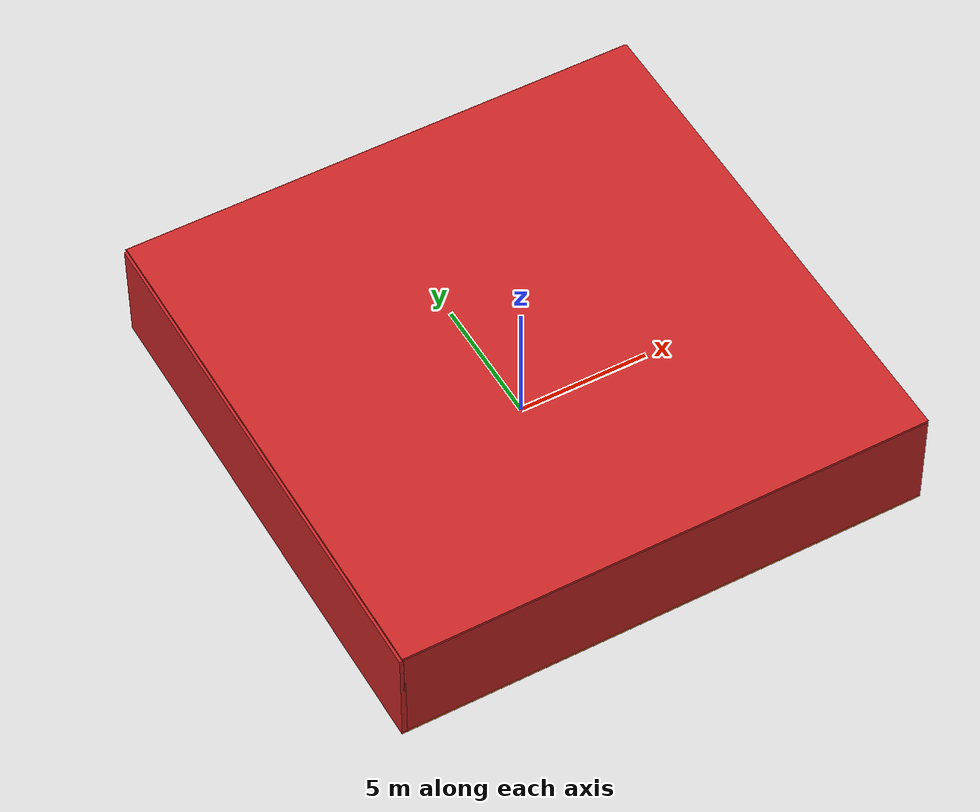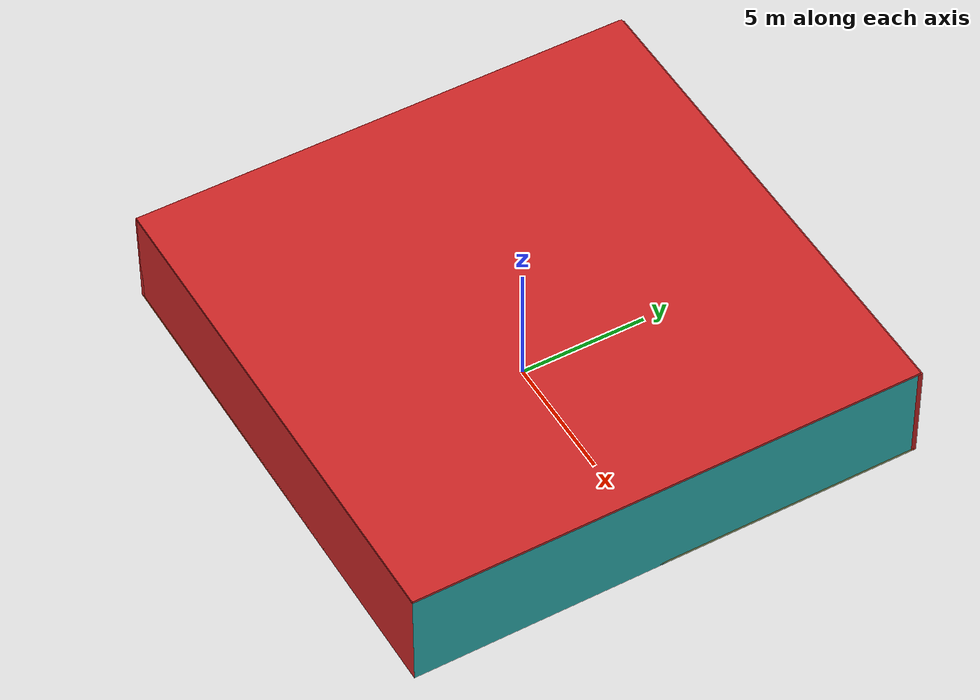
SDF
<sdf version="1.4">
 <world name="default">
  <physics type="ode">
   <max_step_size>0.001</max_step_size>
   <real_time_factor>1</real_time_factor>
   <real_time_update_rate>1000</real_time_update_rate>
   <gravity>0 0 -9.8</gravity>
  </physics>
  <scene><ambient>0.4 0.4 0.4 1</ambient><background>0.7 0.7 0.7 1</background><shadows>1</shadows></scene>
  <model name="Surrounding">
   <static>1</static>
   <link name="Ceiling">
    <collision name="Ceiling_Collision"><geometry><box><size>20 20 0.1</size></box></geometry></collision>
    <visual name="Ceiling_Visual">
     <geometry><box><size>20 20 0.1</size></box></geometry>
     <material>
      <script><uri>file://media/materials/scripts/gazebo.material</uri><name>Gazebo/RedGlow</name></script>
     </material>
    </visual>
    <pose>0 0 4.05 0 0 0</pose>
   </link>
   <link name="Wall_South">
    <collision name="Wall_South_Collision">
     <geometry><box><size>20 0 4</size></box></geometry>
     <pose>0 0 2 0 -0 0</pose>
    </collision>
    <visual name="Wall_South_Visual">
     <pose>0 0 2 0 -0 0</pose>
     <geometry><box><size>20 0 4</size></box></geometry>
     <material>
      <script><uri>file://media/materials/scripts/gazebo.material</uri><name>Gazebo/RedBright</name></script>
     </material>
    </visual>
    <velocity_decay><linear>0</linear><angular>0</angular></velocity_decay>
    <pose>0 -10 0 0 -0 0</pose>
   </link>
   <link name="Wall_East">
    <collision name="Wall_21_Collision">
     <geometry><box><size>20 0 4</size></box></geometry>
     <pose>0 0 2 0 -0 0</pose>
    </collision>
    <visual name="Wall_21_Visual">
     <pose>0 0 2 0 -0 0</pose>
     <geometry><box><size>20 0 4</size></box></geometry>
     <material>
      <script>
       <uri>file://media/materials/scripts/gazebo.material</uri>
       <name>Gazebo/TurquoiseGlowOutline</name>
      </script>
     </material>
    </visual>
    <velocity_decay><linear>0</linear><angular>0</angular></velocity_decay>
    <pose>10 0 0 0 -0 1.5708</pose>
   </link>
   <link name="Wall_North">
    <collision name="Wall_22_Collision">
     <geometry><box><size>20 0.2 4</size></box></geometry>
     <pose>0 0 2 0 -0 0</pose>
    </collision>
    <visual name="Wall_22_Visual">
     <pose>0 0 2 0 -0 0</pose>
     <geometry><box><size>20 0.2 4</size></box></geometry>
     <material>
      <script><uri>file://media/materials/scripts/gazebo.material</uri><name>Gazebo/RedGlow</name></script>
     </material>
    </visual>
    <velocity_decay><linear>0</linear><angular>0</angular></velocity_decay>
    <pose>0 10 0 0 -0 0</pose>
   </link>
   <link name="Wall_West">
    <collision name="Wall_23_Collision">
     <geometry><box><size>20 0.2 4</size></box></geometry>
     <pose>0 0 2 0 -0 0</pose>
    </collision>
    <visual name="Wall_23_Visual">
     <pose>0 0 2 0 -0 0</pose>
     <geometry><box><size>20 0.2 4</size></box></geometry>
     <material>
      <script><uri>file://media/materials/scripts/gazebo.material</uri><name>Gazebo/Red</name></script>
     </material>
    </visual>
    <velocity_decay><linear>0</linear><angular>0</angular></velocity_decay>
    <pose>-10 0 0 0 0 -1.5708</pose>
   </link>
   <link name="Ground_link">
    <collision name="collision">
     <pose>0 0 .05 0 -0 0</pose>
     <geometry><box><size>20 20 0.1</size></box></geometry>
    </collision>
    <visual name="visual">
     <pose>0 0 .05 0 -0 0</pose>
     <geometry><box><size>20 20 0.1</size></box></geometry>
     <material>
      <script>
       <uri>file://media/materials/scripts/gazebo.material</uri>
       <name>Gazebo/OrangeTransparent</name>
      </script>
     </material>
    </visual>
   </link>
   <static>1</static>
  </model>
  <spherical_coordinates>
   <surface_model>EARTH_WGS84</surface_model>
   <latitude_deg>0</latitude_deg>
   <longitude_deg>0</longitude_deg>
   <elevation>0</elevation>
   <heading_deg>0</heading_deg>
  </spherical_coordinates>
  <light name="lightball_0" type="diffuse">
   <diffuse>0.8 0.8 0.8 1</diffuse>
   <specular>0.2 0.2 0.2 1</specular>
   <attenuation>
    <range>100</range>
    <constant>0.7</constant>
    <linear>0.01</linear>
    <quadratic>0.001</quadratic>
   </attenuation>
   <direction>-0.5 0.1 -0.9</direction>
   <pose>-8.66628517001 2.91021592244 2.44352476002 0 0 0</pose>
  </light>
  <light name="lightball_1" type="diffuse">
   <diffuse>0.8 0.8 0.8 1</diffuse>
   <specular>0.2 0.2 0.2 1</specular>
   <attenuation>
    <range>100</range>
    <constant>0.7</constant>
    <linear>0.01</linear>
    <quadratic>0.001</quadratic>
   </attenuation>
   <direction>-0.5 0.1 -0.9</direction>
   <pose>-2.67743521249 -4.21911867908 3.69198565178 0 0 0</pose>
  </light>
  <light name="lightball_2" type="diffuse">
   <diffuse>0.8 0.8 0.8 1</diffuse>
   <specular>0.2 0.2 0.2 1</specular>
   <attenuation>
    <range>100</range>
    <constant>0.7</constant>
    <linear>0.01</linear>
    <quadratic>0.001</quadratic>
   </attenuation>
   <direction>-0.5 0.1 -0.9</direction>
   <pose>2.08517463802 -9.63748601568 0.778774742876 0 0 0</pose>
  </light>
  <light name="lightball_3" type="diffuse">
   <diffuse>0.8 0.8 0.8 1</diffuse>
   <specular>0.2 0.2 0.2 1</specular>
   <attenuation>
    <range>100</range>
    <constant>0.7</constant>
    <linear>0.01</linear>
    <quadratic>0.001</quadratic>
   </attenuation>
   <direction>-0.5 0.1 -0.9</direction>
   <pose>2.73017329094 8.59639276212 2.00708234466 0 0 0</pose>
  </light>
  <light name="lightball_4" type="diffuse">
   <diffuse>0.8 0.8 0.8 1</diffuse>
   <specular>0.2 0.2 0.2 1</specular>
   <attenuation>
    <range>100</range>
    <constant>0.7</constant>
    <linear>0.01</linear>
    <quadratic>0.001</quadratic>
   </attenuation>
   <direction>-0.5 0.1 -0.9</direction>
   <pose>4.26485933936 3.99161443178 3.48043035424 0 0 0</pose>
  </light>
  <light name="lightball_5" type="diffuse">
   <diffuse>0.8 0.8 0.8 1</diffuse>
   <specular>0.2 0.2 0.2 1</specular>
   <attenuation>
    <range>100</range>
    <constant>0.7</constant>
    <linear>0.01</linear>
    <quadratic>0.001</quadratic>
   </attenuation>
   <direction>-0.5 0.1 -0.9</direction>
   <pose>7.51723693313 -1.89911057308 2.64647037711 0 0 0</pose>
  </light>
  <light name="lightball_6" type="diffuse">
   <diffuse>0.8 0.8 0.8 1</diffuse>
   <specular>0.2 0.2 0.2 1</specular>
   <attenuation>
    <range>100</range>
    <constant>0.7</constant>
    <linear>0.01</linear>
    <quadratic>0.001</quadratic>
   </attenuation>
   <direction>-0.5 0.1 -0.9</direction>
   <pose>-5.84089132358 -0.352616922346 2.99408615199 0 0 0</pose>
  </light>
  <light name="lightball_7" type="diffuse">
   <diffuse>0.8 0.8 0.8 1</diffuse>
   <specular>0.2 0.2 0.2 1</specular>
   <attenuation>
    <range>100</range>
    <constant>0.7</constant>
    <linear>0.01</linear>
    <quadratic>0.001</quadratic>
   </attenuation>
   <direction>-0.5 0.1 -0.9</direction>
   <pose>-6.47324840517 4.53301240955 3.43935200599 0 0 0</pose>
  </light>
  <light name="lightball_8" type="diffuse">
   <diffuse>0.8 0.8 0.8 1</diffuse>
   <specular>0.2 0.2 0.2 1</specular>
   <attenuation>
    <range>100</range>
    <constant>0.7</constant>
    <linear>0.01</linear>
    <quadratic>0.001</quadratic>
   </attenuation>
   <direction>-0.5 0.1 -0.9</direction>
   <pose>3.95477259867 6.7132357276 1.74902602596 0 0 0</pose>
  </light>
  <light name="lightball_9" type="diffuse">
   <diffuse>0.8 0.8 0.8 1</diffuse>
   <specular>0.2 0.2 0.2 1</specular>
   <attenuation>
    <range>100</range>
    <constant>0.7</constant>
    <linear>0.01</linear>
    <quadratic>0.001</quadratic>
   </attenuation>
   <direction>-0.5 0.1 -0.9</direction>
   <pose>-4.34680169698 6.49243357378 1.3522575209 0 0 0</pose>
  </light>
  <light name="lightball_10" type="diffuse">
   <diffuse>0.8 0.8 0.8 1</diffuse>
   <specular>0.2 0.2 0.2 1</specular>
   <attenuation>
    <range>100</range>
    <constant>0.7</constant>
    <linear>0.01</linear>
    <quadratic>0.001</quadratic>
   </attenuation>
   <direction>-0.5 0.1 -0.9</direction>
   <pose>-6.38719800767 6.87198370705 2.85709200185 0 0 0</pose>
  </light>
  <light name="lightball_11" type="diffuse">
   <diffuse>0.8 0.8 0.8 1</diffuse>
   <specular>0.2 0.2 0.2 1</specular>
   <attenuation>
    <range>100</range>
    <constant>0.7</constant>
    <linear>0.01</linear>
    <quadratic>0.001</quadratic>
   </attenuation>
   <direction>-0.5 0.1 -0.9</direction>
   <pose>-9.29915161944 -9.92723922411 1.43676851434 0 0 0</pose>
  </light>
  <light name="lightball_12" type="diffuse">
   <diffuse>0.8 0.8 0.8 1</diffuse>
   <specular>0.2 0.2 0.2 1</specular>
   <attenuation>
    <range>100</range>
    <constant>0.7</constant>
    <linear>0.01</linear>
    <quadratic>0.001</quadratic>
   </attenuation>
   <direction>-0.5 0.1 -0.9</direction>
   <pose>-2.35629338811 3.79479728513 3.22377314694 0 0 0</pose>
  </light>
  <light name="lightball_13" type="diffuse">
   <diffuse>0.8 0.8 0.8 1</diffuse>
   <specular>0.2 0.2 0.2 1</specular>
   <attenuation>
    <range>100</range>
    <constant>0.7</constant>
    <linear>0.01</linear>
    <quadratic>0.001</quadratic>
   </attenuation>
   <direction>-0.5 0.1 -0.9</direction>
   <pose>3.30921298677 -6.72114479978 1.9038414513 0 0 0</pose>
  </light>
  <include>
   <uri>model://textured_shapes</uri>
   <pose>-7.56891709865 1.28689248567 0 0 0 0.182707073895</pose>
  </include>
  <include><uri>model://table</uri><pose>-2.14834379376 3.8897099189 0 0 0 0.34941458528</pose></include>
  <include><uri>model://cabinet</uri><pose>0.594875420427 -0.397121611822 0 0 0 3.05357512469</pose></include>
  <include>
   <uri>model://robocup_3Dsim_goal</uri>
   <pose>8.25059219415 7.21689643313 0 0 0 3.09708522323</pose>
  </include>
 </world>
</sdf>

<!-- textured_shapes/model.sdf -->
<sdf version="1.6">
  <model name="textured_shapes">
    <pose>0 0 0.5 0 0 0</pose>
    <link name="box">
      <pose>0 -1.5 0 0 0 0</pose>
      <collision name="collision">
        <geometry>
          <box>
            <size>1 1 1</size>
          </box>
        </geometry>
      </collision>
      <visual name="visual">
        <geometry>
          <box>
            <size>1 1 1</size>
          </box>
        </geometry>
        <material>
          <script>
            <uri>model://../model_source/models/textured_shapes/materials/scripts</uri>
            <uri>model://../model_source/models/textured_shapes/materials/textures</uri>
            <name>TexturedShape/Squares</name>
          </script>
        </material>
      </visual>
    </link>
    <link name="sphere">
      <collision name="collision">
        <geometry>
          <sphere>
            <radius>0.5</radius>
          </sphere>
        </geometry>
      </collision>
      <visual name="visual">
        <geometry>
          <sphere>
            <radius>0.5</radius>
          </sphere>
        </geometry>
        <material>
          <script>
            <uri>model://../model_source/models/textured_shapes/materials/scripts</uri>
            <uri>model://../model_source/models/textured_shapes/materials/textures</uri>
            <name>TexturedShape/Squares</name>
          </script>
        </material>
      </visual>
    </link>
    <link name="cylinder">
      <pose>0 1.5 0 0 0 0</pose>
      <collision name="collision">
        <geometry>
          <cylinder>
            <radius>0.5</radius>
            <length>1</length>
          </cylinder>
        </geometry>
      </collision>
      <visual name="visual">
        <geometry>
          <cylinder>
            <radius>0.5</radius>
            <length>1</length>
          </cylinder>
        </geometry>
        <material>
          <script>
            <uri>model://../model_source/models/textured_shapes/materials/scripts</uri>
            <uri>model://../model_source/models/textured_shapes/materials/textures</uri>
            <name>TexturedShape/Squares</name>
          </script>
        </material>
      </visual>
    </link>
  </model>
</sdf>

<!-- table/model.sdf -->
<sdf version="1.5">
  <model name="table">
    <static>true</static>
    <link name="link">
      <collision name="surface">
        <pose>0 0 1.0 0 0 0</pose>
        <geometry>
          <box>
            <size>1.5 0.8 0.03</size>
          </box>
        </geometry>
        <surface>
          <friction>
            <ode>
              <mu>0.6</mu>
              <mu2>0.6</mu2>
            </ode>
          </friction>
        </surface>
      </collision>
      <visual name="visual1">
        <pose>0 0 1.0 0 0 0</pose>
        <geometry>
          <box>
            <size>1.5 0.8 0.03</size>
          </box>
        </geometry>
        <material>
          <script>
            <uri>model://media/materials/scripts/gazebo.material</uri>
            <name>Gazebo/Wood</name>
          </script>
        </material>
      </visual>
      <collision name="front_left_leg">
        <pose>0.68 0.38 0.5 0 0 0</pose>
        <geometry>
          <cylinder>
            <radius>0.02</radius>
            <length>1.0</length>
          </cylinder>
        </geometry>
      </collision>
      <visual name="front_left_leg">
        <pose>0.68 0.38 0.5 0 0 0</pose>
        <geometry>
          <cylinder>
            <radius>0.02</radius>
            <length>1.0</length>
          </cylinder>
        </geometry>
        <material>
          <script>
            <uri>model://media/materials/scripts/gazebo.material</uri>
            <name>Gazebo/Grey</name>
          </script>
        </material>
      </visual>
      <collision name="front_right_leg">
        <pose>0.68 -0.38 0.5 0 0 0</pose>
        <geometry>
          <cylinder>
            <radius>0.02</radius>
            <length>1.0</length>
          </cylinder>
        </geometry>
      </collision>
      <visual name="front_right_leg">
        <pose>0.68 -0.38 0.5 0 0 0</pose>
        <geometry>
          <cylinder>
            <radius>0.02</radius>
            <length>1.0</length>
          </cylinder>
        </geometry>
        <material>
          <script>
            <uri>model://media/materials/scripts/gazebo.material</uri>
            <name>Gazebo/Grey</name>
          </script>
        </material>
      </visual>
      <collision name="back_right_leg">
        <pose>-0.68 -0.38 0.5 0 0 0</pose>
        <geometry>
          <cylinder>
            <radius>0.02</radius>
            <length>1.0</length>
          </cylinder>
        </geometry>
      </collision>
      <visual name="back_right_leg">
        <pose>-0.68 -0.38 0.5 0 0 0</pose>
        <geometry>
          <cylinder>
            <radius>0.02</radius>
            <length>1.0</length>
          </cylinder>
        </geometry>
        <material>
          <script>
            <uri>model://media/materials/scripts/gazebo.material</uri>
            <name>Gazebo/Grey</name>
          </script>
        </material>
      </visual>
      <collision name="back_left_leg">
        <pose>-0.68 0.38 0.5 0 0 0</pose>
        <geometry>
          <cylinder>
            <radius>0.02</radius>
            <length>1.0</length>
          </cylinder>
        </geometry>
      </collision>
      <visual name="back_left_leg">
        <pose>-0.68 0.38 0.5 0 0 0</pose>
        <geometry>
          <cylinder>
            <radius>0.02</radius>
            <length>1.0</length>
          </cylinder>
        </geometry>
        <material>
          <script>
            <uri>model://media/materials/scripts/gazebo.material</uri>
            <name>Gazebo/Grey</name>
          </script>
        </material>
      </visual>
    </link>
  </model>
</sdf>

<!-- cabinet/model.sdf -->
<sdf version="1.5">
  <model name="cabinet">
    <static>true</static>
    <link name="cabinet_bottom_plate">
      <inertial>
        <pose>0 0 -1 0 0 0</pose>
        <inertia>
          <ixx>2.050000</ixx>
          <ixy>0</ixy>
          <ixz>0</ixz>
          <iyy>2.050000</iyy>
          <iyz>0</iyz>
          <izz>2.050000</izz>
        </inertia>
        <mass>25.000000</mass>
      </inertial>
      <collision name="cabinet_bottom_plate_geom">
        <pose>0 0 0.010000 0 0 0</pose>
        <geometry>
          <box>
            <size>0.450000 0.450000 0.020000</size>
          </box>
        </geometry>
      </collision>
      <visual name="cabinet_bottom_plate_geom_visual">
        <pose>0 0 0.010000 0 0 0</pose>
        <geometry>
          <box>
            <size>0.450000 0.450000 0.020000</size>
          </box>
        </geometry>
        <material>
          <script>
            <uri>model://media/materials/scripts/gazebo.material</uri>
            <name>Gazebo/Wood</name>
          </script>
        </material>
      </visual>
      <collision name="cabinet_bottom_plate_geom_cabinet_back_plate">
        <pose>0.235000 0 0.510000 0 0 0</pose>
        <geometry>
          <box>
            <size>0.020000 0.450000 1.020000</size>
          </box>
        </geometry>
      </collision>
      <visual name="cabinet_bottom_plate_geom_cabinet_back_plate_visual">
        <pose>0.235000 0 0.510000 0 0 0</pose>
        <geometry>
          <box>
            <size>0.020000 0.450000 1.020000</size>
          </box>
        </geometry>
        <material>
          <script>
            <uri>model://media/materials/scripts/gazebo.material</uri>
            <name>Gazebo/Wood</name>
          </script>
        </material>
      </visual>
      <collision name="cabinet_bottom_plate_geom_cabinet_left_plate">
        <pose>0 0.235000 0.510000 0 0 0</pose>
        <geometry>
          <box>
            <size>0.450000 0.020000 1.020000</size>
          </box>
        </geometry>
      </collision>
      <visual name="cabinet_bottom_plate_geom_cabinet_left_plate_visual">
        <pose>0 0.235000 0.510000 0 0 0</pose>
        <geometry>
          <box>
            <size>0.450000 0.020000 1.020000</size>
          </box>
        </geometry>
        <material>
          <script>
            <uri>model://media/materials/scripts/gazebo.material</uri>
            <name>Gazebo/Wood</name>
          </script>
        </material>
      </visual>
      <collision name="cabinet_bottom_plate_geom_cabinet_middle_plate">
        <pose>0 0 0.510000 0 0 0</pose>
        <geometry>
          <box>
            <size>0.450000 0.450000 0.020000</size>
          </box>
        </geometry>
      </collision>
      <visual name="cabinet_bottom_plate_geom_cabinet_middle_plate_visual">
        <pose>0 0 0.510000 0 0 0</pose>
        <geometry>
          <box>
            <size>0.450000 0.450000 0.020000</size>
          </box>
        </geometry>
        <material>
          <script>
            <uri>model://media/materials/scripts/gazebo.material</uri>
            <name>Gazebo/Wood</name>
          </script>
        </material>
      </visual>
      <collision name="cabinet_bottom_plate_geom_cabinet_right_plate">
        <pose>0 -0.235000 0.510000 0 0 0</pose>
        <geometry>
          <box>
            <size>0.450000 0.020000 1.020000</size>
          </box>
        </geometry>
      </collision>
      <visual name="cabinet_bottom_plate_geom_cabinet_right_plate_visual">
        <pose>0 -0.235000 0.510000 0 0 0</pose>
        <geometry>
          <box>
            <size>0.450000 0.020000 1.020000</size>
          </box>
        </geometry>
        <material>
          <script>
            <uri>model://media/materials/scripts/gazebo.material</uri>
            <name>Gazebo/Wood</name>
          </script>
        </material>
      </visual>
      <collision name="cabinet_bottom_plate_geom_cabinet_top_plate">
        <pose>0 0 1.010000 0 0 0</pose>
        <geometry>
          <box>
            <size>0.450000 0.450000 0.020000</size>
          </box>
        </geometry>
      </collision>
      <visual name="cabinet_bottom_plate_geom_cabinet_top_plate_visual">
        <pose>0 0 1.010000 0 0 0</pose>
        <geometry>
          <box>
            <size>0.450000 0.450000 0.020000</size>
          </box>
        </geometry>
        <material>
          <script>
            <uri>model://media/materials/scripts/gazebo.material</uri>
            <name>Gazebo/Wood</name>
          </script>
        </material>
      </visual>
    </link>
  </model>
</sdf>

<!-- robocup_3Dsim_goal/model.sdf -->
<sdf version="1.5">
  <model name="robocup_3d_goal">
    <static>true</static>
    <link name="left_post">
      <pose>0 1.05 0.45 0 0 0</pose>
      <collision name="collision">
        <geometry>
          <cylinder>
            <radius>0.05</radius>
            <length>0.9</length>
          </cylinder>
        </geometry>
      </collision>
      <visual name="visual">
        <geometry>
          <cylinder>
            <radius>0.05</radius>
            <length>0.9</length>
          </cylinder>
        </geometry>
        <material>
          <script>
            <uri>file://media/materials/scripts/gazebo.material</uri>
            <name>Gazebo/ZincYellow</name>
          </script>
        </material>
      </visual>
    </link>
    <link name="left_support_horiz_lower">
      <pose>0.30 1.05 0.01 0 0 0</pose>
      <collision name="collision">
        <geometry>
          <box>
            <size>0.50 0.02 0.02</size>
          </box>
        </geometry>
      </collision>
      <visual name="visual">
        <geometry>
          <box>
            <size>0.50 0.02 0.02</size>
          </box>
        </geometry>
        <material>
          <script>
            <uri>file://media/materials/scripts/gazebo.material</uri>
            <name>Gazebo/White</name>
          </script>
        </material>
      </visual>
    </link>
    <link name="left_support_horiz_upper">
      <pose>0.30 1.05 0.79 0 0 0</pose>
      <collision name="collision">
        <geometry>
          <box>
            <size>0.50 0.02 0.02</size>
          </box>
        </geometry>
      </collision>
      <visual name="visual">
        <geometry>
          <box>
            <size>0.50 0.02 0.02</size>
          </box>
        </geometry>
        <material>
          <script>
            <uri>file://media/materials/scripts/gazebo.material</uri>
            <name>Gazebo/White</name>
          </script>
        </material>
      </visual>
    </link>
    <link name="left_support_vertical">
      <pose>0.56 1.05 0.4 0 1.5708 0</pose>
      <collision name="collision">
        <geometry>
          <box>
            <size>0.80 0.02 0.02</size>
          </box>
        </geometry>
      </collision>
      <visual name="visual">
        <geometry>
          <box>
            <size>0.80 0.02 0.02</size>
          </box>
        </geometry>
        <material>
          <script>
            <uri>file://media/materials/scripts/gazebo.material</uri>
            <name>Gazebo/White</name>
          </script>
        </material>
      </visual>
    </link>
    <link name="right_support_horiz_lower">
      <pose>0.30 -1.05 0.01 0 0 0</pose>
      <collision name="collision">
        <geometry>
          <box>
            <size>0.50 0.02 0.02</size>
          </box>
        </geometry>
      </collision>
      <visual name="visual">
        <geometry>
          <box>
            <size>0.50 0.02 0.02</size>
          </box>
        </geometry>
        <material>
          <script>
            <uri>file://media/materials/scripts/gazebo.material</uri>
            <name>Gazebo/White</name>
          </script>
        </material>
      </visual>
    </link>
    <link name="right_support_horiz_upper">
      <pose>0.30 -1.05 0.79 0 0 0</pose>
      <collision name="collision">
        <geometry>
          <box>
            <size>0.50 0.02 0.02</size>
          </box>
        </geometry>
      </collision>
      <visual name="visual">
        <geometry>
          <box>
            <size>0.50 0.02 0.02</size>
          </box>
        </geometry>
        <material>
          <script>
            <uri>file://media/materials/scripts/gazebo.material</uri>
            <name>Gazebo/White</name>
          </script>
        </material>
      </visual>
    </link>
    <link name="right_support_vertical">
      <pose>0.56 -1.05 0.4 0 1.5708 0</pose>
      <collision name="collision">
        <geometry>
          <box>
            <size>0.80 0.02 0.02</size>
          </box>
        </geometry>
      </collision>
      <visual name="visual">
        <geometry>
          <box>
            <size>0.80 0.02 0.02</size>
          </box>
        </geometry>
        <material>
          <script>
            <uri>file://media/materials/scripts/gazebo.material</uri>
            <name>Gazebo/White</name>
          </script>
        </material>
      </visual>
    </link>
    <link name="center_support_horiz_lower">
      <pose>0.56 0 0.01 0 1.5708 0</pose>
      <collision name="collision">
        <geometry>
          <box>
            <size>0.02 2.08 0.02</size>
          </box>
        </geometry>
      </collision>
      <visual name="visual">
        <geometry>
          <box>
            <size>0.02 2.08 0.02</size>
          </box>
        </geometry>
        <material>
          <script>
            <uri>file://media/materials/scripts/gazebo.material</uri>
            <name>Gazebo/White</name>
          </script>
        </material>
      </visual>
    </link>
    <link name="center_support_horiz_upper">
      <pose>0.56 0 0.79 0 1.5708 0</pose>
      <collision name="collision">
        <geometry>
          <box>
            <size>0.02 2.08 0.02</size>
          </box>
        </geometry>
      </collision>
      <visual name="visual">
        <geometry>
          <box>
            <size>0.02 2.08 0.02</size>
          </box>
        </geometry>
        <material>
          <script>
            <uri>file://media/materials/scripts/gazebo.material</uri>
            <name>Gazebo/White</name>
          </script>
        </material>
      </visual>
    </link>
    <link name="right_post">
      <pose>0 -1.05 0.45 0 0 0</pose>
      <collision name="collision">
        <geometry>
          <cylinder>
            <radius>0.05</radius>
            <length>0.9</length>
          </cylinder>
        </geometry>
      </collision>
      <visual name="visual">
        <geometry>
          <cylinder>
            <radius>0.05</radius>
            <length>0.9</length>
          </cylinder>
        </geometry>
        <material>
          <script>
            <uri>file://media/materials/scripts/gazebo.material</uri>
            <name>Gazebo/ZincYellow</name>
          </script>
        </material>
      </visual>
    </link>
    <link name="crossbar">
      <pose>0 0 0.85 1.57 1.57 0</pose>
      <collision name="collision">
        <geometry>
          <cylinder>
            <radius>0.05</radius>
            <length>2.0</length>
          </cylinder>
        </geometry>
      </collision>
      <visual name="visual">
        <geometry>
          <cylinder>
            <radius>0.05</radius>
            <length>2.0</length>
          </cylinder>
        </geometry>
        <material>
          <script>
            <uri>file://media/materials/scripts/gazebo.material</uri>
            <name>Gazebo/ZincYellow</name>
          </script>
        </material>
      </visual>
    </link>
    <link name="center_net">
      <pose>0.56 0 0.40 0 0 0</pose>
      <collision name="collision">
        <geometry>
          <box>
            <size>0.01 2.1 0.80</size>
          </box>
        </geometry>
      </collision>
      <visual name="visual">
        <geometry>
          <box>
            <size>0.01 2.1 0.80</size>
          </box>
        </geometry>
        <material>
          <script>
            <uri>model://../model_source/models/robocup09_spl_field/materials/scripts/</uri>
            <uri>model://../model_source/models/robocup09_spl_field/materials/textures/</uri>
            <name>RoboCup/Net</name>
          </script>
        </material>
      </visual>
    </link>
    <link name="left_net">
      <pose>0.30 1.05 0.40 0 0 0</pose>
      <collision name="collision">
        <geometry>
          <box>
            <size>0.50 0.01 0.76</size>
          </box>
        </geometry>
      </collision>
      <visual name="visual">
        <geometry>
          <box>
            <size>0.50 0.01 0.76</size>
          </box>
        </geometry>
        <material>
          <script>
            <uri>model://../model_source/models/robocup09_spl_field/materials/scripts/</uri>
            <uri>model://../model_source/models/robocup09_spl_field/materials/textures/</uri>
            <name>RoboCup/Net</name>
          </script>
        </material>
      </visual>
    </link>
    <link name="right_net">
      <pose>0.30 -1.05 0.40 0 0 0</pose>
      <collision name="collision">
        <geometry>
          <box>
            <size>0.50 0.01 0.76</size>
          </box>
        </geometry>
      </collision>
      <visual name="visual">
        <geometry>
          <box>
            <size>0.50 0.01 0.76</size>
          </box>
        </geometry>
        <material>
          <script>
            <uri>model://../model_source/models/robocup09_spl_field/materials/scripts/</uri>
            <uri>model://../model_source/models/robocup09_spl_field/materials/textures/</uri>
            <name>RoboCup/Net</name>
          </script>
        </material>
      </visual>
    </link>
  </model>
</sdf>
